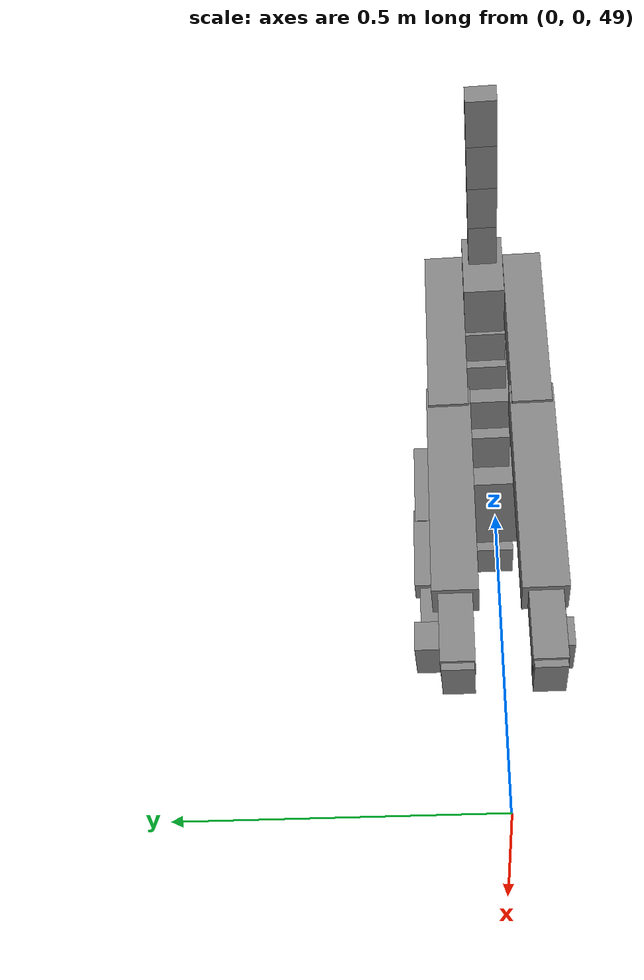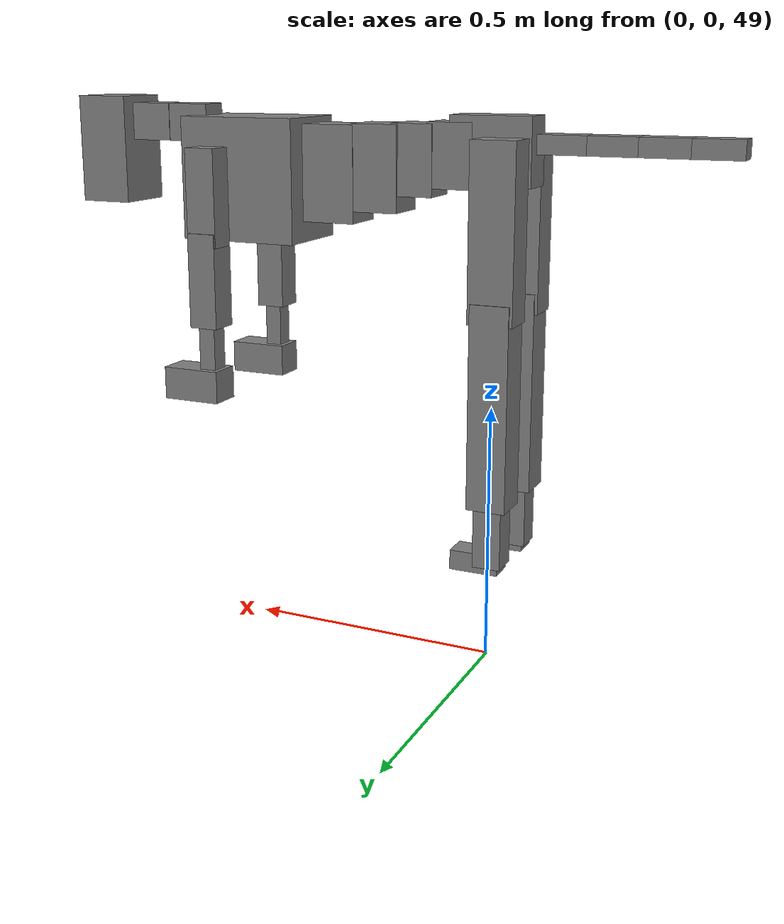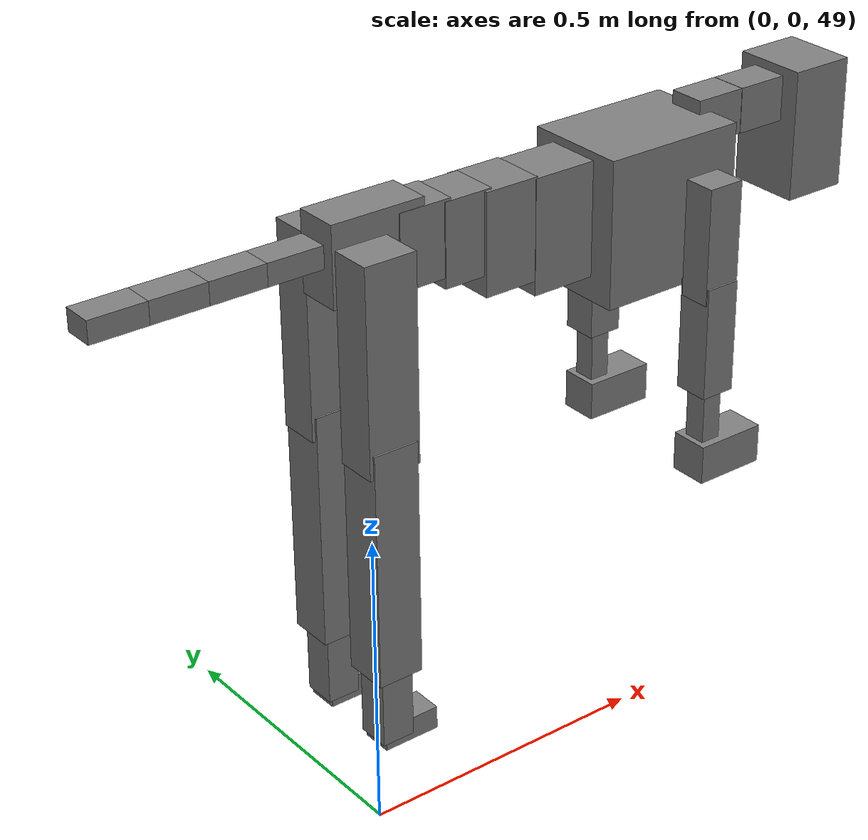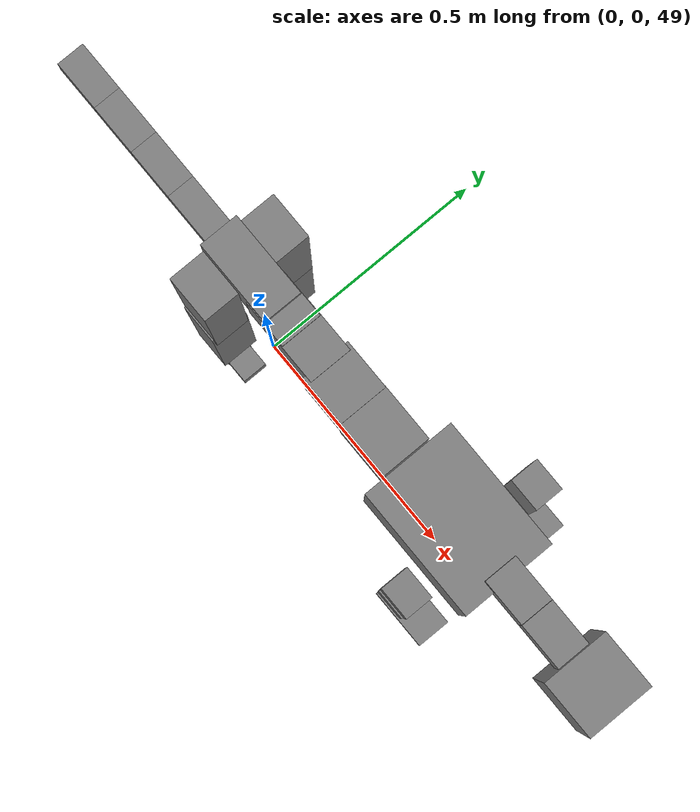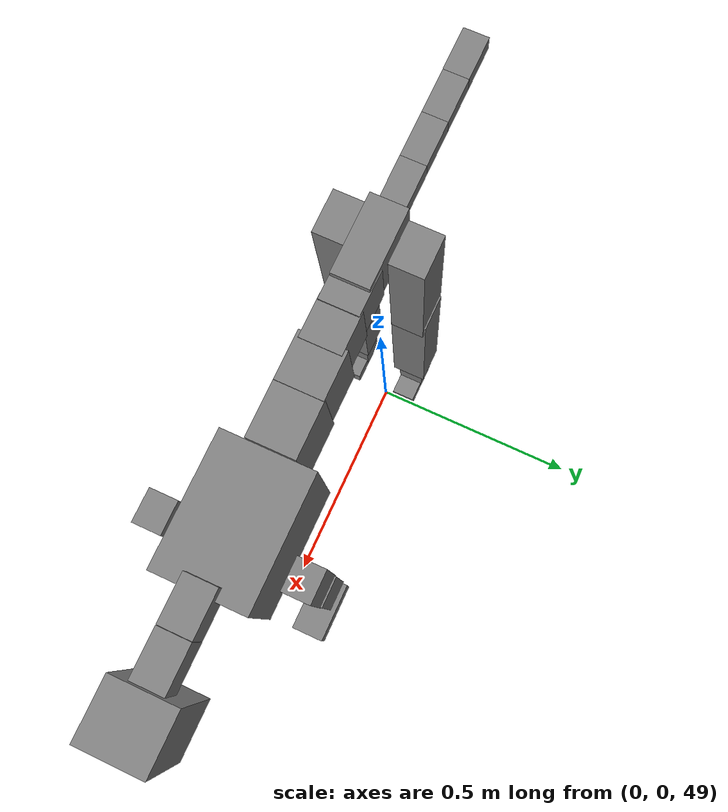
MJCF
<mujoco model="dog">

    <default>
        <joint armature="0.02" stiffness="1" damping="0.2" limited="true"/>
        <geom condim="3" friction="1 0.05 0.05" margin="0.01"/>
        <motor ctrllimited="true" ctrlrange="-1.0 1.0" forcelimited="true" gear="50"/>
    </default>

    <compiler inertiafromgeom="true" angle="radian"/>

    <option timestep="0.016" iterations="50" tolerance="1e-10" solver="Newton" jacobian="dense" cone="pyramidal"/>

    <size nconmax="20000" njmax="60000" nstack="5000000"/>
    <visual>
        <map force="0.1" zfar="30"/>
        <rgba haze="0.15 0.25 0.35 1"/>
        <quality shadowsize="2048"/>
        <global offwidth="800" offheight="800"/>
    </visual>

    <asset>
        <texture type="skybox" builtin="gradient" rgb1="0.3 0.5 0.7" rgb2="0 0 0" width="512" height="512"/>
        <texture name="texplane" type="2d" builtin="checker" rgb1=".2 .3 .4" rgb2=".1 0.15 0.2" width="512" height="512"
                 mark="cross" markrgb=".8 .8 .8"/>
        <texture name="texgeom" type="cube" builtin="flat" mark="cross" width="127" height="1278" rgb1="0.8 0.6 0.4"
                 rgb2="0.8 0.6 0.4" markrgb="1 1 1" random="0.01"/>

        <material name="matplane" reflectance="0.3" texture="texplane" texrepeat="1 1" texuniform="true"/>
        <material name="matgeom" texture="texgeom" texuniform="true" rgba="0.8 0.6 .4 1"/>
    </asset>

    <worldbody>
        <geom name="floor" pos="0 0 0" size="0 0 .25" type="plane" material="matplane" condim="3"/>

        <light directional="false" diffuse=".2 .2 .2" specular="0 0 0" pos="0 0 5" dir="0 0 -1" castshadow="false"/>
        <light mode="targetbodycom" target="torso" directional="false" diffuse=".8 .8 .8" specular="0.3 0.3 0.3"
               pos="0 0 4.0" dir="0 0 -1"/>

        <body name="root" pos="0 0 50">
            <freejoint name="root_1"/>
            <geom type="box" pos="0 0 -0.02" size="0.0774  0.0358  0.063" density="2030"/>

            <body name="spine1" pos="0.054 0 0">
                <joint name="spine1_y" axis="0 1 0" range="0 0.7" limited="true"/>
                <geom type="box" pos="0.02375 0 -0.03" size="0.04375  0.0375  0.05985" density="2030"/>

                <body name="spine2" pos="0.0612 0 0">
                    <joint name="spine2_y" axis="0 1 0" range="-0.15 0.15" limited="true"/>
                    <geom type="box" pos="0.03555  0  -0.04" size="0.04055  0.039  0.06615" density="2030"/>

                    <body name="spine3" pos="0.0730 0 0">
                        <joint name="spine3_y" axis="0 1 0" range="-0.15 0.15" limited="true"/>
                        <geom type="box" pos="0.03555  0  -0.057" size="0.04555  0.0445  0.081" density="2030"/>

                        <body name="spine4" pos="0.0780 0 0">
                            <joint name="spine4_y" axis="0 1 0" range="-0.15 0.15" limited="true"/>
                            <geom type="box" pos="0.05265  0  -0.07" size="0.05265  0.045  0.09135" density="2030"/>

                            <body name="torso" pos="0.1082 0 0">
                                <joint name="torso_y" axis="0 1 0" range="-0.15 0.15" limited="true"/>
                                <geom type="box" pos="0.11925  0  -0.085" size="0.11925  0.085  0.11745"
                                      density="2030"/>

                                <body name="neck1" pos="0.2160  0   0.0180">
                                    <joint name="neck1_y" axis="0 1 0" range="-1.2  -1" limited="true"/>
                                    <geom type="box" pos="0.0423  0  0" size="0.0423  0.03  0.036" density="2325"/>

                                    <body name="neck2" pos="0.0853  0  0">
                                        <joint name="neck2_y" axis="0 1 0" range="0.1  0" limited="true"/>
                                        <geom type="box" pos="0.0423  0  0" size="0.0423  0.03  0.036" density="2325"/>

                                        <body name="head" pos="0.0853  0  0">
                                            <joint name="head_y" axis="0 1 0" range="-0.3  -0.2" limited="true"/>
                                            <geom type="box" pos="0.0531  0  -0.055" size="0.0531  0.06  0.1044"
                                                  density="4030"/>

                                        </body>
                                    </body>
                                </body>

                                <body name="front_shoulder" pos="0.156  0   -0.0480">
                                    <joint name="front_shoulder_y" axis="0 1 0" range="-1 1.5" limited="true"/>
                                    <geom type="box" pos="0 0.13 -0.0663" size="0.0302  0.0259  0.0929" density="1158"/>
                                    <geom type="box" pos="0 -0.13 -0.0663" size="0.0302  0.0259  0.0929"
                                          density="1158"/>

                                    <body name="front_elbow" pos="0  0  -0.1326">
                                        <joint name="front_elbow_y" axis="0 1 0" range="-2 0" limited="true"/>
                                        <geom type="box" pos="0 0.13 -0.0907" size="0.0285  0.0292  0.0907"
                                              density="1081"/>
                                        <geom type="box" pos="0 -0.13 -0.0907" size="0.0285  0.0292  0.0907"
                                              density="1081"/>

                                        <body name="front_wrist" pos="0  0  -0.1814">
                                            <joint name="front_wrist_y" axis="0 1 0" range="-0.2 0" limited="true"/>
                                            <geom type="box" pos="0 0.13 -0.0489" size="0.0166  0.0184  0.0621"
                                                  density="1664"/>
                                            <geom type="box" pos="0 -0.13 -0.0489" size="0.0166  0.0184  0.0621"
                                                  density="1664"/>

                                            <body name="front_finger_end" pos="0  0  -0.0978">
                                                <joint name="front_finger_y" axis="0 1 0" range="-0.4 1"
                                                       limited="true"/>
                                                <geom type="box" pos="0.0317  0.13  -0.0164"
                                                      size="0.0582  0.0317  0.0314" density="1515"/>
                                                <geom type="box" pos="0.0317  -0.13  -0.0164"
                                                      size="0.0582  0.0317  0.0314" density="1515"/>

                                            </body>

                                        </body>
                                    </body>
                                </body>

                            </body>
                        </body>
                    </body>
                </body>
            </body>

            <body name="back_hip" pos="-0.03 0 -0.018">
                <joint name="back_hip_y" axis="0 1 0" range="-1.5 0.3" limited="true"/>
                <geom type="box" pos="0 0.07 -0.1402" size="0.0428  0.0336  0.1630" density="1154"/>
                <geom type="box" pos="0 -0.07 -0.1402" size="0.0428  0.0336  0.1630" density="1154"/>

                <body name="back_knee" pos="0  0  -0.2805">
                    <joint name="back_knee_y" axis="0 1 0" range="0 2.8" limited="true"/>
                    <geom type="box" pos="0 0.07 -0.1769" size="0.0374  0.0368  0.1925" density="1227"/>
                    <geom type="box" pos="0 -0.07 -0.1769" size="0.0374  0.0368  0.1925" density="1227"/>

                    <body name="back_ankle" pos="0  0  -0.3539">
                        <joint name="back_ankle_y" axis="0 1 0" range="-2.2 0" limited="true"/>
                        <geom type="box" pos="0 0.07 -0.0595" size="0.0269  0.0269  0.0707" density="1284"/>
                        <geom type="box" pos="0 -0.07 -0.0595" size="0.0269  0.0269  0.0707" density="1284"/>

                        <body name="back_toe_end" pos="0  0  -0.1189">
                            <joint name="back_toe_y" axis="0 1 0" range="-0.4 1" limited="true"/>
                            <geom type="box" pos="0.0255  0.07  -0.0040" size="0.0468  0.0255  0.0190" density="1515"/>
                            <geom type="box" pos="0.0255  -0.07  -0.0040" size="0.0468  0.0255  0.0190" density="1515"/>

                        </body>
                    </body>
                </body>
            </body>

            <body name="tail1" pos="-0.074 0 -0.006">
                <joint name="tail1_y" axis="0 1 0" range="-0.2 0.2" limited="true"/>
                <geom type="box" pos="-0.0536  0  0" size="0.045  0.025  0.0175" density="1587"/>

                <body name="tail2" pos="-0.09 0 0">
                    <joint name="tail2_y" axis="0 1 0" range="-0.2 0.2" limited="true"/>
                    <geom type="box" pos="-0.0536  0  0" size="0.045  0.025  0.0175" density="1587"/>

                    <body name="tail3" pos="-0.09 0 0">
                        <joint name="tail3_y" axis="0 1 0" range="-0.2 0.2" limited="true"/>
                        <geom type="box" pos="-0.0536  0  0" size="0.045  0.025  0.0175" density="1587"/>

                        <body name="tail4" pos="-0.09 0 0">
                            <joint name="tail4_y" axis="0 1 0" range="-0.2 0.2" limited="true"/>
                            <geom type="box" pos="-0.0536  0  0" size="0.045  0.025  0.0175" density="1587"/>

                        </body>
                    </body>
                </body>
            </body>
        </body>
    </worldbody>

    <actuator>
        <motor joint="spine1_y" forcerange="-150 150     "/>
        <motor joint="spine2_y" forcerange="-150 150     "/>
        <motor joint="spine3_y" forcerange="-150 150     "/>
        <motor joint="spine4_y" forcerange="-150 150     "/>
        <motor joint="torso_y" forcerange="-150 150     "/>
        <motor joint="neck1_y" forcerange="-100 100       "/>
        <motor joint="neck2_y" forcerange="-100 100       "/>
        <motor joint="head_y" forcerange="-150 150       "/>
        <motor joint="front_shoulder_y" forcerange="-132.60 139.75"/>
        <motor joint="front_elbow_y" forcerange="-164.37 147.69"/>
        <motor joint="front_wrist_y" forcerange="-62.26 85.31"/>
        <motor joint="front_finger_y" forcerange="-96.32 32.96"/>
        <motor joint="back_hip_y" forcerange="-376.48 270.96"/>
        <motor joint="back_knee_y" forcerange="-348.63 386.88"/>
        <motor joint="back_angle_y" forcerange="-136.96 193.92"/>
        <motor joint="back_toe_y" forcerange="-81.95 42.21"/>
        <motor joint="tail1_y" forcerange="-50 50     "/>
        <motor joint="tail2_y" forcerange="-50 50     "/>
        <motor joint="tail3_y" forcerange="-50 50     "/>
        <motor joint="tail4_y" forcerange="-50 50     "/>
    </actuator>
</mujoco>
